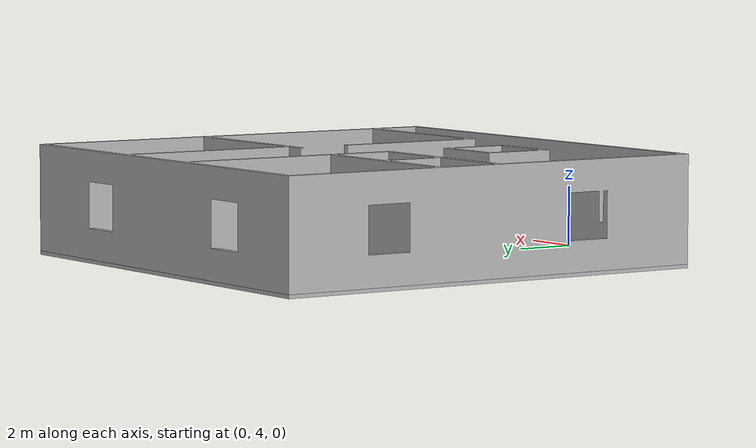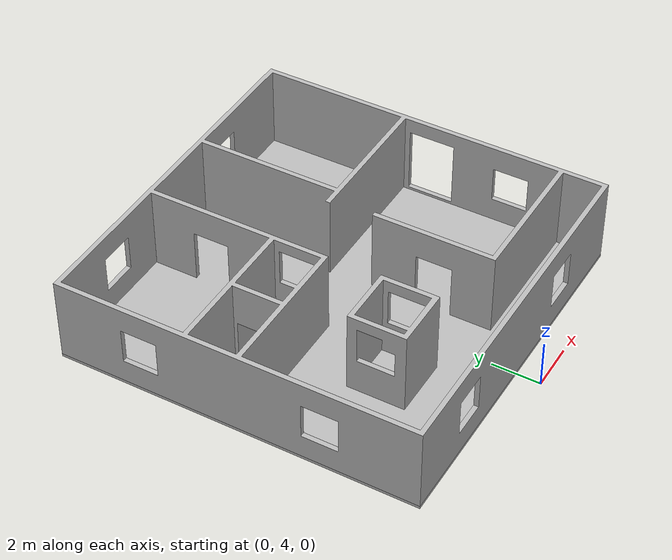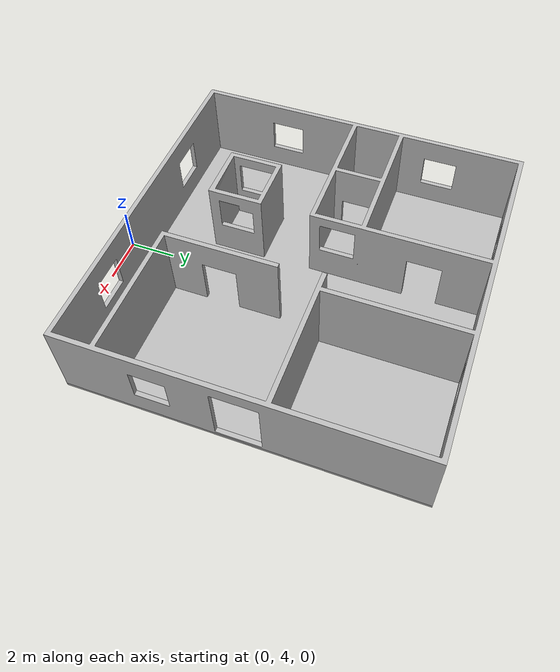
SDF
<?xml version="1.0"?>
<sdf version="1.5">
    <model name="house">
        <static>true</static>
        <link name="link">
            <collision name="collision1">
                <pose>0 12.5 0 0 0 0</pose>
                <geometry>
                    <mesh>
                        <uri>model://house_test/meshes/house_walls.stl</uri>
                    </mesh>
                </geometry>
            </collision>
            <visual name="visual_walls">
              <pose>0 12.5 0 0 0 0</pose>
              <geometry>
              <mesh>
                 <uri>model://house_test/meshes/house_walls_wallpapers.dae</uri>
              </mesh>
              </geometry>
              <material>
                  <script>
                      <uri>model://house_test/materials/scripts</uri>
                      <uri>model://house_test/materials/textures</uri>
                      <name>houseMat/Diffuse</name>
                  </script>
              </material>
             </visual>

             <collision name="collision2">
                <pose>0 12.5 0 0 0 0</pose>
                <geometry>
                    <mesh>
                        <uri>model://house_test/meshes/house_flor.stl</uri>
                    </mesh>
                </geometry>
            </collision>
            <visual name="visual_flor">
              <pose>0 12.5 0 0 0 0</pose>
              <geometry>
              <mesh>
                 <uri>model://house_test/meshes/house_flor_wallpapers.dae</uri>
              </mesh>
              </geometry>
              <material>
                  <script>
                      <uri>model://house_test/materials/scripts</uri>
                      <uri>model://house_test/materials/textures</uri>
                      <name>houseMat/Diffuse</name>
                  </script>
              </material>
             </visual>

        </link>
    </model>
</sdf>
